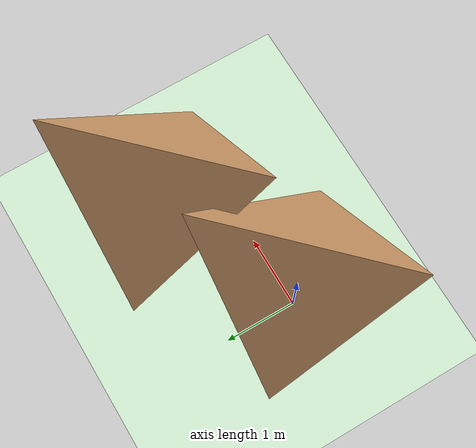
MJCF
<mujoco model="ant">
  <compiler angle="degree" coordinate="local" inertiafromgeom="true"/>
  <option timestep="0.01" iterations="4" />
  <custom>
    <!-- brax custom params -->
    <numeric data="0.0 0.0 0. 1.0 0.0 0.0 0.0 0.0 0.0 0. 1.0 0.0 0.0 0.0" name="init_qpos"/>
    <numeric data="1000" name="constraint_limit_stiffness"/>
    <numeric data="4000" name="constraint_stiffness"/>
    <numeric data="10" name="constraint_ang_damping"/>
    <numeric data="20" name="constraint_vel_damping"/>
    <numeric data="0.0" name="ang_damping"/>
    <numeric data="1" name="spring_mass_scale"/>
    <numeric data="1" name="spring_inertia_scale"/>
    <numeric data="15" name="solver_maxls"/>
  </custom>

  <default>
    <joint armature="1" damping="1" limited="true"/>
    <geom contype="0" conaffinity="0" condim="3" density="5.0" friction="1 0.5 0.5" rgba="0.8 0.6 0.4 1"/>
  </default>
  <asset>
    <texture builtin="gradient" height="100" rgb1="1 1 1" rgb2="0 0 0" type="skybox" width="100"/>
    <texture builtin="flat" height="1278" mark="cross" markrgb="1 1 1" name="texgeom" random="0.01" rgb1="0.8 0.6 0.4" rgb2="0.8 0.6 0.4" type="cube" width="127"/>
    <texture builtin="checker" height="100" name="texplane" rgb1="0 0 0" rgb2="0.8 0.8 0.8" type="2d" width="100"/>
    <material name="MatPlane" reflectance="0.5" shininess="1" specular="1" texrepeat="60 60" texture="texplane"/>
    <material name="geom" texture="texgeom" texuniform="true"/>
    <mesh name="box" file="tet.obj"/>
  </asset>

  <worldbody>
    <light cutoff="100" diffuse="1 1 1" dir="-0 0 -1.3" directional="true" exponent="1" pos="0 0 1.3" specular=".1 .1 .1"/>
    <geom conaffinity="1" condim="3" material="MatPlane" name="floor" pos="0 0 0" rgba="0.8 0.9 0.8 1" size="40 40 40" type="plane"/>

    <body name="box1" pos="0 0 1.6">
      <geom name="box1" contype="1" conaffinity="1" pos="0 0 0" type="mesh" mesh="box"/>
      <joint armature="0" damping="0" limited="false" margin="0.01" name="root1" pos="0 0 0" type="free"/>
    </body>

    <body name="box2" pos="1.8 0.9 1.7">
      <geom name="box2" contype="1" conaffinity="1" pos="0 0 0" type="mesh" mesh="box"/>
      <joint armature="0" damping="0" limited="false" margin="0.01" name="root2" pos="0 0 0" type="free"/>
    </body>

  </worldbody>
</mujoco>
